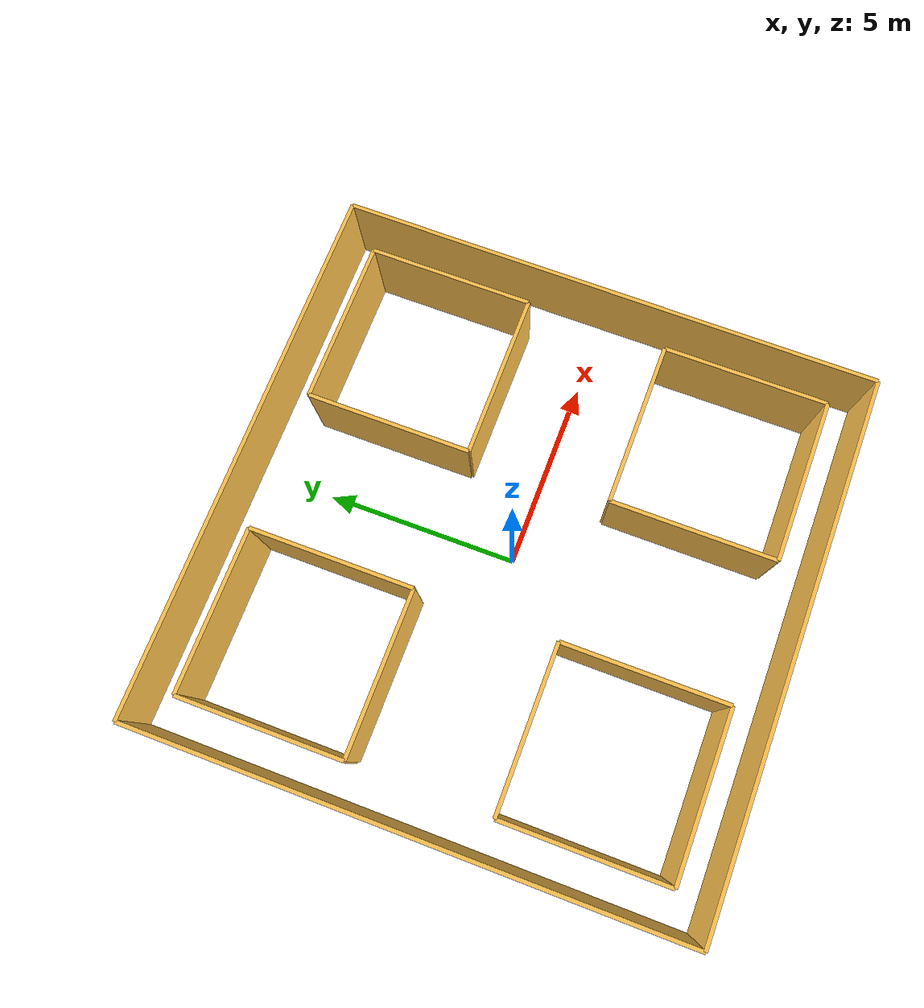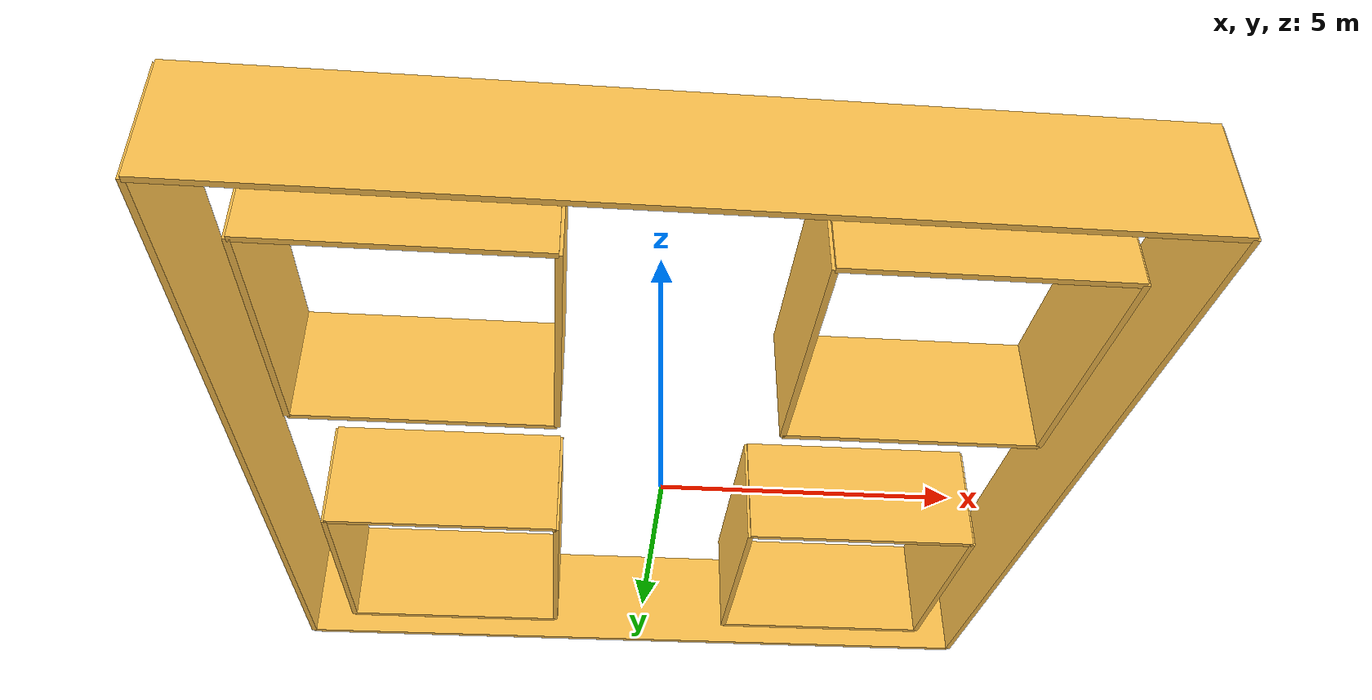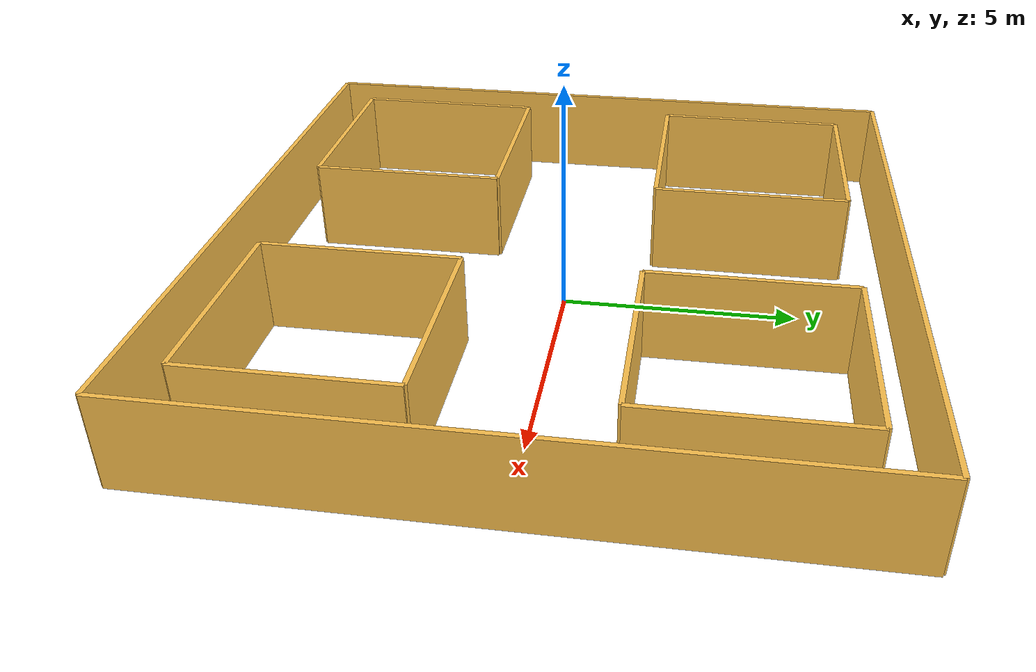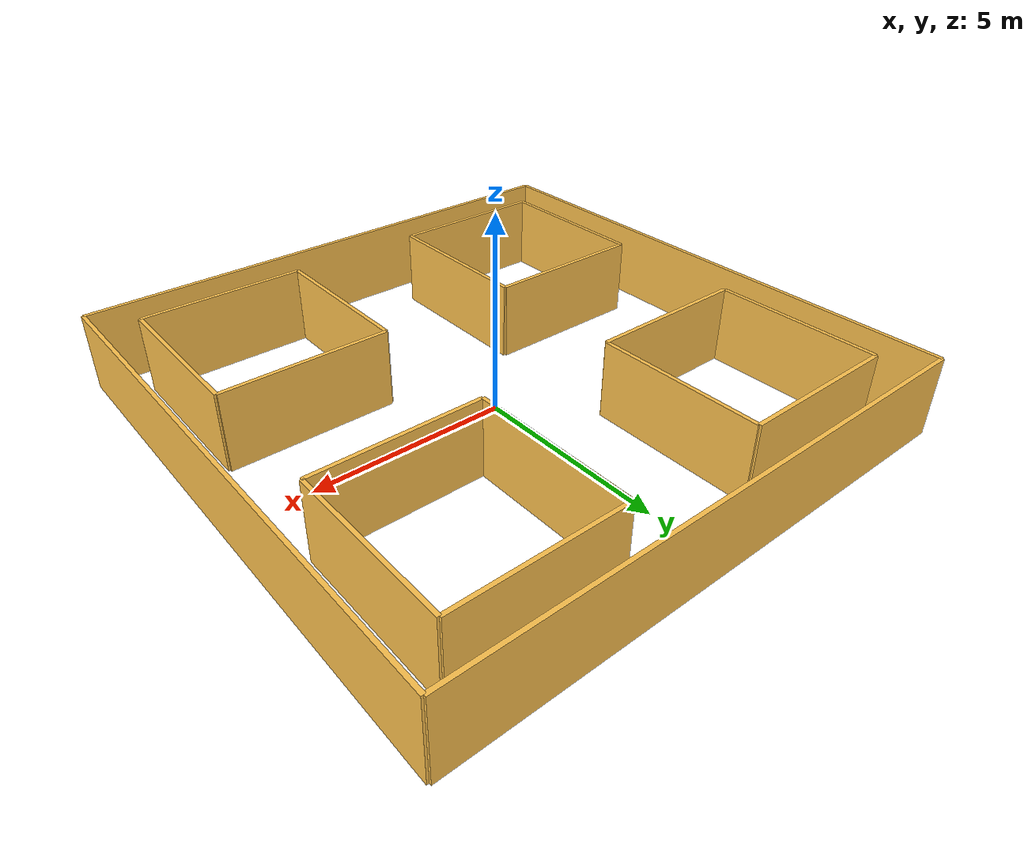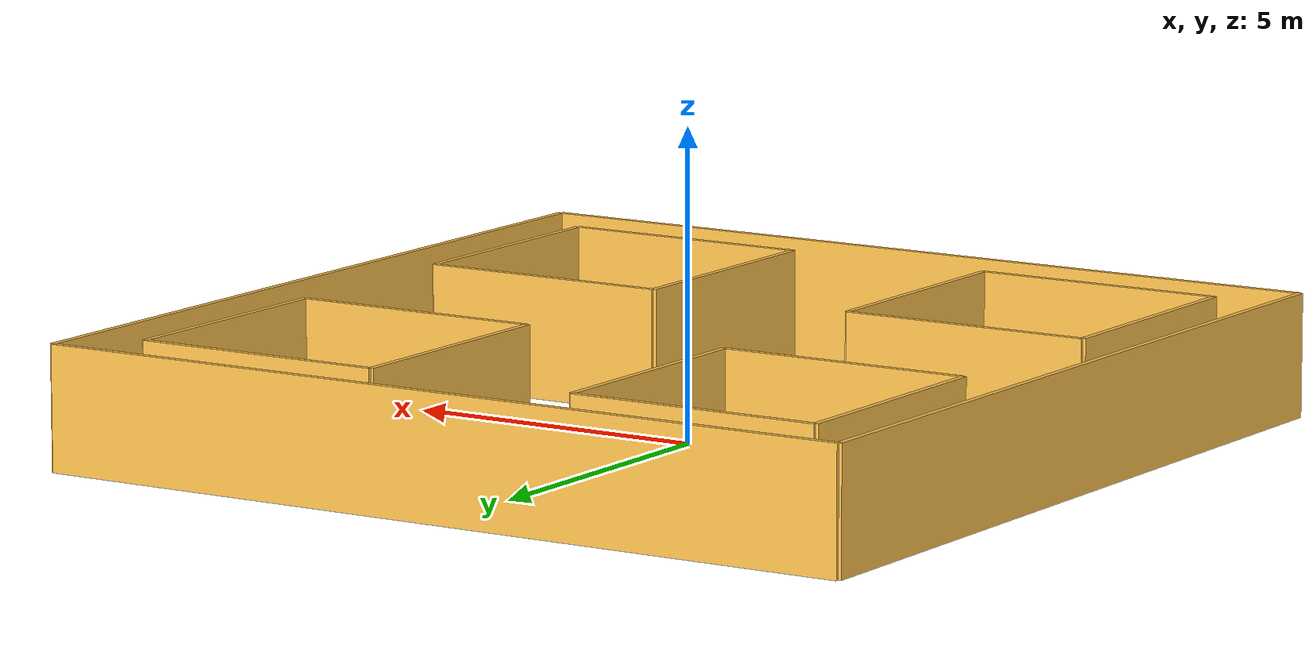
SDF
<?xml version='1.0' encoding='utf-8'?>
<sdf version="1.6">
  <model name="test_data_cross">
    <static>true</static>
    <link name="wall_0">
      <pose>-6.0 3.9 1.0 0 0 1.5707963267948966</pose>
      <self_collide>0</self_collide>
      <kinematic>0</kinematic>
      <visual name="wall_0_visual">
        <geometry>
          <box>
            <size>4.2 0.1 2.0</size>
            </box>
          </geometry>
        <material>
          <script>
            <uri>file://media/materials/scripts/gazebo.material</uri>
            <name>Gazebo/Grey</name>
            </script>
          <ambient>1 0.764706 0.305882 1</ambient>
          <diffuse>0.7 0.7 0.7 1</diffuse>
          <specular>0.01 0.01 0.01 1</specular>
          <emissive>0 0 0 1</emissive>
          <shader type="pixel" />
          </material>
        <cast_shadows>1</cast_shadows>
        <transparency>0</transparency>
        </visual>
      <collision name="wall_0_collision">
        <geometry>
          <box>
            <size>4.2 0.1 2.0</size>
            </box>
          </geometry>
        <laser_retro>0</laser_retro>
        <max_contacts>10</max_contacts>
        <surface>
          <friction>
            <ode>
              <mu>1</mu>
              <mu2>1</mu2>
              <fdir1>0 0 0</fdir1>
              <slip1>0</slip1>
              <slip2>0</slip2>
              </ode>
            </friction>
          <bounce>
            <restitution_coefficient>0</restitution_coefficient>
            <threshold>1000000</threshold>
            </bounce>
          <contact>
            <collide_without_contact>0</collide_without_contact>
            <collide_without_contact_bitmask>1</collide_without_contact_bitmask>
            <collide_bitmask>1</collide_bitmask>
            <ode>
              <soft_cfm>0</soft_cfm>
              <soft_erp>0.2</soft_erp>
              <kp>10000000000000.0</kp>
              <kd>1</kd>
              <max_vel>0.01</max_vel>
              <min_depth>0</min_depth>
              </ode>
            <bullet>
              <split_impulse>1</split_impulse>
              <split_impulse_penetration_threshold>-0.01</split_impulse_penetration_threshold>
              <soft_cfm>0</soft_cfm>
              <soft_erp>0.2</soft_erp>
              <kp>10000000000000.0</kp>
              <kd>1</kd>
              </bullet>
            </contact>
          </surface>
        </collision>
      </link>
    <link name="wall_1">
      <pose>-3.9 6.0 1.0 0 0 0.0</pose>
      <self_collide>0</self_collide>
      <kinematic>0</kinematic>
      <visual name="wall_1_visual">
        <geometry>
          <box>
            <size>4.2 0.1 2.0</size>
            </box>
          </geometry>
        <material>
          <script>
            <uri>file://media/materials/scripts/gazebo.material</uri>
            <name>Gazebo/Grey</name>
            </script>
          <ambient>1 0.764706 0.305882 1</ambient>
          <diffuse>0.7 0.7 0.7 1</diffuse>
          <specular>0.01 0.01 0.01 1</specular>
          <emissive>0 0 0 1</emissive>
          <shader type="pixel" />
          </material>
        <cast_shadows>1</cast_shadows>
        <transparency>0</transparency>
        </visual>
      <collision name="wall_1_collision">
        <geometry>
          <box>
            <size>4.2 0.1 2.0</size>
            </box>
          </geometry>
        <laser_retro>0</laser_retro>
        <max_contacts>10</max_contacts>
        <surface>
          <friction>
            <ode>
              <mu>1</mu>
              <mu2>1</mu2>
              <fdir1>0 0 0</fdir1>
              <slip1>0</slip1>
              <slip2>0</slip2>
              </ode>
            </friction>
          <bounce>
            <restitution_coefficient>0</restitution_coefficient>
            <threshold>1000000</threshold>
            </bounce>
          <contact>
            <collide_without_contact>0</collide_without_contact>
            <collide_without_contact_bitmask>1</collide_without_contact_bitmask>
            <collide_bitmask>1</collide_bitmask>
            <ode>
              <soft_cfm>0</soft_cfm>
              <soft_erp>0.2</soft_erp>
              <kp>10000000000000.0</kp>
              <kd>1</kd>
              <max_vel>0.01</max_vel>
              <min_depth>0</min_depth>
              </ode>
            <bullet>
              <split_impulse>1</split_impulse>
              <split_impulse_penetration_threshold>-0.01</split_impulse_penetration_threshold>
              <soft_cfm>0</soft_cfm>
              <soft_erp>0.2</soft_erp>
              <kp>10000000000000.0</kp>
              <kd>1</kd>
              </bullet>
            </contact>
          </surface>
        </collision>
      </link>
    <link name="wall_2">
      <pose>-1.8 3.9 1.0 0 0 -1.5707963267948966</pose>
      <self_collide>0</self_collide>
      <kinematic>0</kinematic>
      <visual name="wall_2_visual">
        <geometry>
          <box>
            <size>4.2 0.1 2.0</size>
            </box>
          </geometry>
        <material>
          <script>
            <uri>file://media/materials/scripts/gazebo.material</uri>
            <name>Gazebo/Grey</name>
            </script>
          <ambient>1 0.764706 0.305882 1</ambient>
          <diffuse>0.7 0.7 0.7 1</diffuse>
          <specular>0.01 0.01 0.01 1</specular>
          <emissive>0 0 0 1</emissive>
          <shader type="pixel" />
          </material>
        <cast_shadows>1</cast_shadows>
        <transparency>0</transparency>
        </visual>
      <collision name="wall_2_collision">
        <geometry>
          <box>
            <size>4.2 0.1 2.0</size>
            </box>
          </geometry>
        <laser_retro>0</laser_retro>
        <max_contacts>10</max_contacts>
        <surface>
          <friction>
            <ode>
              <mu>1</mu>
              <mu2>1</mu2>
              <fdir1>0 0 0</fdir1>
              <slip1>0</slip1>
              <slip2>0</slip2>
              </ode>
            </friction>
          <bounce>
            <restitution_coefficient>0</restitution_coefficient>
            <threshold>1000000</threshold>
            </bounce>
          <contact>
            <collide_without_contact>0</collide_without_contact>
            <collide_without_contact_bitmask>1</collide_without_contact_bitmask>
            <collide_bitmask>1</collide_bitmask>
            <ode>
              <soft_cfm>0</soft_cfm>
              <soft_erp>0.2</soft_erp>
              <kp>10000000000000.0</kp>
              <kd>1</kd>
              <max_vel>0.01</max_vel>
              <min_depth>0</min_depth>
              </ode>
            <bullet>
              <split_impulse>1</split_impulse>
              <split_impulse_penetration_threshold>-0.01</split_impulse_penetration_threshold>
              <soft_cfm>0</soft_cfm>
              <soft_erp>0.2</soft_erp>
              <kp>10000000000000.0</kp>
              <kd>1</kd>
              </bullet>
            </contact>
          </surface>
        </collision>
      </link>
    <link name="wall_3">
      <pose>-3.9 1.8 1.0 0 0 3.141592653589793</pose>
      <self_collide>0</self_collide>
      <kinematic>0</kinematic>
      <visual name="wall_3_visual">
        <geometry>
          <box>
            <size>4.2 0.1 2.0</size>
            </box>
          </geometry>
        <material>
          <script>
            <uri>file://media/materials/scripts/gazebo.material</uri>
            <name>Gazebo/Grey</name>
            </script>
          <ambient>1 0.764706 0.305882 1</ambient>
          <diffuse>0.7 0.7 0.7 1</diffuse>
          <specular>0.01 0.01 0.01 1</specular>
          <emissive>0 0 0 1</emissive>
          <shader type="pixel" />
          </material>
        <cast_shadows>1</cast_shadows>
        <transparency>0</transparency>
        </visual>
      <collision name="wall_3_collision">
        <geometry>
          <box>
            <size>4.2 0.1 2.0</size>
            </box>
          </geometry>
        <laser_retro>0</laser_retro>
        <max_contacts>10</max_contacts>
        <surface>
          <friction>
            <ode>
              <mu>1</mu>
              <mu2>1</mu2>
              <fdir1>0 0 0</fdir1>
              <slip1>0</slip1>
              <slip2>0</slip2>
              </ode>
            </friction>
          <bounce>
            <restitution_coefficient>0</restitution_coefficient>
            <threshold>1000000</threshold>
            </bounce>
          <contact>
            <collide_without_contact>0</collide_without_contact>
            <collide_without_contact_bitmask>1</collide_without_contact_bitmask>
            <collide_bitmask>1</collide_bitmask>
            <ode>
              <soft_cfm>0</soft_cfm>
              <soft_erp>0.2</soft_erp>
              <kp>10000000000000.0</kp>
              <kd>1</kd>
              <max_vel>0.01</max_vel>
              <min_depth>0</min_depth>
              </ode>
            <bullet>
              <split_impulse>1</split_impulse>
              <split_impulse_penetration_threshold>-0.01</split_impulse_penetration_threshold>
              <soft_cfm>0</soft_cfm>
              <soft_erp>0.2</soft_erp>
              <kp>10000000000000.0</kp>
              <kd>1</kd>
              </bullet>
            </contact>
          </surface>
        </collision>
      </link>
    <link name="wall_4">
      <pose>-6.0 -3.9 1.0 0 0 1.5707963267948966</pose>
      <self_collide>0</self_collide>
      <kinematic>0</kinematic>
      <visual name="wall_4_visual">
        <geometry>
          <box>
            <size>4.2 0.1 2.0</size>
            </box>
          </geometry>
        <material>
          <script>
            <uri>file://media/materials/scripts/gazebo.material</uri>
            <name>Gazebo/Grey</name>
            </script>
          <ambient>1 0.764706 0.305882 1</ambient>
          <diffuse>0.7 0.7 0.7 1</diffuse>
          <specular>0.01 0.01 0.01 1</specular>
          <emissive>0 0 0 1</emissive>
          <shader type="pixel" />
          </material>
        <cast_shadows>1</cast_shadows>
        <transparency>0</transparency>
        </visual>
      <collision name="wall_4_collision">
        <geometry>
          <box>
            <size>4.2 0.1 2.0</size>
            </box>
          </geometry>
        <laser_retro>0</laser_retro>
        <max_contacts>10</max_contacts>
        <surface>
          <friction>
            <ode>
              <mu>1</mu>
              <mu2>1</mu2>
              <fdir1>0 0 0</fdir1>
              <slip1>0</slip1>
              <slip2>0</slip2>
              </ode>
            </friction>
          <bounce>
            <restitution_coefficient>0</restitution_coefficient>
            <threshold>1000000</threshold>
            </bounce>
          <contact>
            <collide_without_contact>0</collide_without_contact>
            <collide_without_contact_bitmask>1</collide_without_contact_bitmask>
            <collide_bitmask>1</collide_bitmask>
            <ode>
              <soft_cfm>0</soft_cfm>
              <soft_erp>0.2</soft_erp>
              <kp>10000000000000.0</kp>
              <kd>1</kd>
              <max_vel>0.01</max_vel>
              <min_depth>0</min_depth>
              </ode>
            <bullet>
              <split_impulse>1</split_impulse>
              <split_impulse_penetration_threshold>-0.01</split_impulse_penetration_threshold>
              <soft_cfm>0</soft_cfm>
              <soft_erp>0.2</soft_erp>
              <kp>10000000000000.0</kp>
              <kd>1</kd>
              </bullet>
            </contact>
          </surface>
        </collision>
      </link>
    <link name="wall_5">
      <pose>-3.9 -1.8 1.0 0 0 0.0</pose>
      <self_collide>0</self_collide>
      <kinematic>0</kinematic>
      <visual name="wall_5_visual">
        <geometry>
          <box>
            <size>4.2 0.1 2.0</size>
            </box>
          </geometry>
        <material>
          <script>
            <uri>file://media/materials/scripts/gazebo.material</uri>
            <name>Gazebo/Grey</name>
            </script>
          <ambient>1 0.764706 0.305882 1</ambient>
          <diffuse>0.7 0.7 0.7 1</diffuse>
          <specular>0.01 0.01 0.01 1</specular>
          <emissive>0 0 0 1</emissive>
          <shader type="pixel" />
          </material>
        <cast_shadows>1</cast_shadows>
        <transparency>0</transparency>
        </visual>
      <collision name="wall_5_collision">
        <geometry>
          <box>
            <size>4.2 0.1 2.0</size>
            </box>
          </geometry>
        <laser_retro>0</laser_retro>
        <max_contacts>10</max_contacts>
        <surface>
          <friction>
            <ode>
              <mu>1</mu>
              <mu2>1</mu2>
              <fdir1>0 0 0</fdir1>
              <slip1>0</slip1>
              <slip2>0</slip2>
              </ode>
            </friction>
          <bounce>
            <restitution_coefficient>0</restitution_coefficient>
            <threshold>1000000</threshold>
            </bounce>
          <contact>
            <collide_without_contact>0</collide_without_contact>
            <collide_without_contact_bitmask>1</collide_without_contact_bitmask>
            <collide_bitmask>1</collide_bitmask>
            <ode>
              <soft_cfm>0</soft_cfm>
              <soft_erp>0.2</soft_erp>
              <kp>10000000000000.0</kp>
              <kd>1</kd>
              <max_vel>0.01</max_vel>
              <min_depth>0</min_depth>
              </ode>
            <bullet>
              <split_impulse>1</split_impulse>
              <split_impulse_penetration_threshold>-0.01</split_impulse_penetration_threshold>
              <soft_cfm>0</soft_cfm>
              <soft_erp>0.2</soft_erp>
              <kp>10000000000000.0</kp>
              <kd>1</kd>
              </bullet>
            </contact>
          </surface>
        </collision>
      </link>
    <link name="wall_6">
      <pose>-1.8 -3.9 1.0 0 0 -1.5707963267948966</pose>
      <self_collide>0</self_collide>
      <kinematic>0</kinematic>
      <visual name="wall_6_visual">
        <geometry>
          <box>
            <size>4.2 0.1 2.0</size>
            </box>
          </geometry>
        <material>
          <script>
            <uri>file://media/materials/scripts/gazebo.material</uri>
            <name>Gazebo/Grey</name>
            </script>
          <ambient>1 0.764706 0.305882 1</ambient>
          <diffuse>0.7 0.7 0.7 1</diffuse>
          <specular>0.01 0.01 0.01 1</specular>
          <emissive>0 0 0 1</emissive>
          <shader type="pixel" />
          </material>
        <cast_shadows>1</cast_shadows>
        <transparency>0</transparency>
        </visual>
      <collision name="wall_6_collision">
        <geometry>
          <box>
            <size>4.2 0.1 2.0</size>
            </box>
          </geometry>
        <laser_retro>0</laser_retro>
        <max_contacts>10</max_contacts>
        <surface>
          <friction>
            <ode>
              <mu>1</mu>
              <mu2>1</mu2>
              <fdir1>0 0 0</fdir1>
              <slip1>0</slip1>
              <slip2>0</slip2>
              </ode>
            </friction>
          <bounce>
            <restitution_coefficient>0</restitution_coefficient>
            <threshold>1000000</threshold>
            </bounce>
          <contact>
            <collide_without_contact>0</collide_without_contact>
            <collide_without_contact_bitmask>1</collide_without_contact_bitmask>
            <collide_bitmask>1</collide_bitmask>
            <ode>
              <soft_cfm>0</soft_cfm>
              <soft_erp>0.2</soft_erp>
              <kp>10000000000000.0</kp>
              <kd>1</kd>
              <max_vel>0.01</max_vel>
              <min_depth>0</min_depth>
              </ode>
            <bullet>
              <split_impulse>1</split_impulse>
              <split_impulse_penetration_threshold>-0.01</split_impulse_penetration_threshold>
              <soft_cfm>0</soft_cfm>
              <soft_erp>0.2</soft_erp>
              <kp>10000000000000.0</kp>
              <kd>1</kd>
              </bullet>
            </contact>
          </surface>
        </collision>
      </link>
    <link name="wall_7">
      <pose>-3.9 -6.0 1.0 0 0 3.141592653589793</pose>
      <self_collide>0</self_collide>
      <kinematic>0</kinematic>
      <visual name="wall_7_visual">
        <geometry>
          <box>
            <size>4.2 0.1 2.0</size>
            </box>
          </geometry>
        <material>
          <script>
            <uri>file://media/materials/scripts/gazebo.material</uri>
            <name>Gazebo/Grey</name>
            </script>
          <ambient>1 0.764706 0.305882 1</ambient>
          <diffuse>0.7 0.7 0.7 1</diffuse>
          <specular>0.01 0.01 0.01 1</specular>
          <emissive>0 0 0 1</emissive>
          <shader type="pixel" />
          </material>
        <cast_shadows>1</cast_shadows>
        <transparency>0</transparency>
        </visual>
      <collision name="wall_7_collision">
        <geometry>
          <box>
            <size>4.2 0.1 2.0</size>
            </box>
          </geometry>
        <laser_retro>0</laser_retro>
        <max_contacts>10</max_contacts>
        <surface>
          <friction>
            <ode>
              <mu>1</mu>
              <mu2>1</mu2>
              <fdir1>0 0 0</fdir1>
              <slip1>0</slip1>
              <slip2>0</slip2>
              </ode>
            </friction>
          <bounce>
            <restitution_coefficient>0</restitution_coefficient>
            <threshold>1000000</threshold>
            </bounce>
          <contact>
            <collide_without_contact>0</collide_without_contact>
            <collide_without_contact_bitmask>1</collide_without_contact_bitmask>
            <collide_bitmask>1</collide_bitmask>
            <ode>
              <soft_cfm>0</soft_cfm>
              <soft_erp>0.2</soft_erp>
              <kp>10000000000000.0</kp>
              <kd>1</kd>
              <max_vel>0.01</max_vel>
              <min_depth>0</min_depth>
              </ode>
            <bullet>
              <split_impulse>1</split_impulse>
              <split_impulse_penetration_threshold>-0.01</split_impulse_penetration_threshold>
              <soft_cfm>0</soft_cfm>
              <soft_erp>0.2</soft_erp>
              <kp>10000000000000.0</kp>
              <kd>1</kd>
              </bullet>
            </contact>
          </surface>
        </collision>
      </link>
    <link name="wall_8">
      <pose>6.0 3.9 1.0 0 0 1.5707963267948966</pose>
      <self_collide>0</self_collide>
      <kinematic>0</kinematic>
      <visual name="wall_8_visual">
        <geometry>
          <box>
            <size>4.2 0.1 2.0</size>
            </box>
          </geometry>
        <material>
          <script>
            <uri>file://media/materials/scripts/gazebo.material</uri>
            <name>Gazebo/Grey</name>
            </script>
          <ambient>1 0.764706 0.305882 1</ambient>
          <diffuse>0.7 0.7 0.7 1</diffuse>
          <specular>0.01 0.01 0.01 1</specular>
          <emissive>0 0 0 1</emissive>
          <shader type="pixel" />
          </material>
        <cast_shadows>1</cast_shadows>
        <transparency>0</transparency>
        </visual>
      <collision name="wall_8_collision">
        <geometry>
          <box>
            <size>4.2 0.1 2.0</size>
            </box>
          </geometry>
        <laser_retro>0</laser_retro>
        <max_contacts>10</max_contacts>
        <surface>
          <friction>
            <ode>
              <mu>1</mu>
              <mu2>1</mu2>
              <fdir1>0 0 0</fdir1>
              <slip1>0</slip1>
              <slip2>0</slip2>
              </ode>
            </friction>
          <bounce>
            <restitution_coefficient>0</restitution_coefficient>
            <threshold>1000000</threshold>
            </bounce>
          <contact>
            <collide_without_contact>0</collide_without_contact>
            <collide_without_contact_bitmask>1</collide_without_contact_bitmask>
            <collide_bitmask>1</collide_bitmask>
            <ode>
              <soft_cfm>0</soft_cfm>
              <soft_erp>0.2</soft_erp>
              <kp>10000000000000.0</kp>
              <kd>1</kd>
              <max_vel>0.01</max_vel>
              <min_depth>0</min_depth>
              </ode>
            <bullet>
              <split_impulse>1</split_impulse>
              <split_impulse_penetration_threshold>-0.01</split_impulse_penetration_threshold>
              <soft_cfm>0</soft_cfm>
              <soft_erp>0.2</soft_erp>
              <kp>10000000000000.0</kp>
              <kd>1</kd>
              </bullet>
            </contact>
          </surface>
        </collision>
      </link>
    <link name="wall_9">
      <pose>3.9 6.0 1.0 0 0 3.141592653589793</pose>
      <self_collide>0</self_collide>
      <kinematic>0</kinematic>
      <visual name="wall_9_visual">
        <geometry>
          <box>
            <size>4.2 0.1 2.0</size>
            </box>
          </geometry>
        <material>
          <script>
            <uri>file://media/materials/scripts/gazebo.material</uri>
            <name>Gazebo/Grey</name>
            </script>
          <ambient>1 0.764706 0.305882 1</ambient>
          <diffuse>0.7 0.7 0.7 1</diffuse>
          <specular>0.01 0.01 0.01 1</specular>
          <emissive>0 0 0 1</emissive>
          <shader type="pixel" />
          </material>
        <cast_shadows>1</cast_shadows>
        <transparency>0</transparency>
        </visual>
      <collision name="wall_9_collision">
        <geometry>
          <box>
            <size>4.2 0.1 2.0</size>
            </box>
          </geometry>
        <laser_retro>0</laser_retro>
        <max_contacts>10</max_contacts>
        <surface>
          <friction>
            <ode>
              <mu>1</mu>
              <mu2>1</mu2>
              <fdir1>0 0 0</fdir1>
              <slip1>0</slip1>
              <slip2>0</slip2>
              </ode>
            </friction>
          <bounce>
            <restitution_coefficient>0</restitution_coefficient>
            <threshold>1000000</threshold>
            </bounce>
          <contact>
            <collide_without_contact>0</collide_without_contact>
            <collide_without_contact_bitmask>1</collide_without_contact_bitmask>
            <collide_bitmask>1</collide_bitmask>
            <ode>
              <soft_cfm>0</soft_cfm>
              <soft_erp>0.2</soft_erp>
              <kp>10000000000000.0</kp>
              <kd>1</kd>
              <max_vel>0.01</max_vel>
              <min_depth>0</min_depth>
              </ode>
            <bullet>
              <split_impulse>1</split_impulse>
              <split_impulse_penetration_threshold>-0.01</split_impulse_penetration_threshold>
              <soft_cfm>0</soft_cfm>
              <soft_erp>0.2</soft_erp>
              <kp>10000000000000.0</kp>
              <kd>1</kd>
              </bullet>
            </contact>
          </surface>
        </collision>
      </link>
    <link name="wall_10">
      <pose>1.8 3.9 1.0 0 0 -1.5707963267948966</pose>
      <self_collide>0</self_collide>
      <kinematic>0</kinematic>
      <visual name="wall_10_visual">
        <geometry>
          <box>
            <size>4.2 0.1 2.0</size>
            </box>
          </geometry>
        <material>
          <script>
            <uri>file://media/materials/scripts/gazebo.material</uri>
            <name>Gazebo/Grey</name>
            </script>
          <ambient>1 0.764706 0.305882 1</ambient>
          <diffuse>0.7 0.7 0.7 1</diffuse>
          <specular>0.01 0.01 0.01 1</specular>
          <emissive>0 0 0 1</emissive>
          <shader type="pixel" />
          </material>
        <cast_shadows>1</cast_shadows>
        <transparency>0</transparency>
        </visual>
      <collision name="wall_10_collision">
        <geometry>
          <box>
            <size>4.2 0.1 2.0</size>
            </box>
          </geometry>
        <laser_retro>0</laser_retro>
        <max_contacts>10</max_contacts>
        <surface>
          <friction>
            <ode>
              <mu>1</mu>
              <mu2>1</mu2>
              <fdir1>0 0 0</fdir1>
              <slip1>0</slip1>
              <slip2>0</slip2>
              </ode>
            </friction>
          <bounce>
            <restitution_coefficient>0</restitution_coefficient>
            <threshold>1000000</threshold>
            </bounce>
          <contact>
            <collide_without_contact>0</collide_without_contact>
            <collide_without_contact_bitmask>1</collide_without_contact_bitmask>
            <collide_bitmask>1</collide_bitmask>
            <ode>
              <soft_cfm>0</soft_cfm>
              <soft_erp>0.2</soft_erp>
              <kp>10000000000000.0</kp>
              <kd>1</kd>
              <max_vel>0.01</max_vel>
              <min_depth>0</min_depth>
              </ode>
            <bullet>
              <split_impulse>1</split_impulse>
              <split_impulse_penetration_threshold>-0.01</split_impulse_penetration_threshold>
              <soft_cfm>0</soft_cfm>
              <soft_erp>0.2</soft_erp>
              <kp>10000000000000.0</kp>
              <kd>1</kd>
              </bullet>
            </contact>
          </surface>
        </collision>
      </link>
    <link name="wall_11">
      <pose>3.9 1.8 1.0 0 0 0.0</pose>
      <self_collide>0</self_collide>
      <kinematic>0</kinematic>
      <visual name="wall_11_visual">
        <geometry>
          <box>
            <size>4.2 0.1 2.0</size>
            </box>
          </geometry>
        <material>
          <script>
            <uri>file://media/materials/scripts/gazebo.material</uri>
            <name>Gazebo/Grey</name>
            </script>
          <ambient>1 0.764706 0.305882 1</ambient>
          <diffuse>0.7 0.7 0.7 1</diffuse>
          <specular>0.01 0.01 0.01 1</specular>
          <emissive>0 0 0 1</emissive>
          <shader type="pixel" />
          </material>
        <cast_shadows>1</cast_shadows>
        <transparency>0</transparency>
        </visual>
      <collision name="wall_11_collision">
        <geometry>
          <box>
            <size>4.2 0.1 2.0</size>
            </box>
          </geometry>
        <laser_retro>0</laser_retro>
        <max_contacts>10</max_contacts>
        <surface>
          <friction>
            <ode>
              <mu>1</mu>
              <mu2>1</mu2>
              <fdir1>0 0 0</fdir1>
              <slip1>0</slip1>
              <slip2>0</slip2>
              </ode>
            </friction>
          <bounce>
            <restitution_coefficient>0</restitution_coefficient>
            <threshold>1000000</threshold>
            </bounce>
          <contact>
            <collide_without_contact>0</collide_without_contact>
            <collide_without_contact_bitmask>1</collide_without_contact_bitmask>
            <collide_bitmask>1</collide_bitmask>
            <ode>
              <soft_cfm>0</soft_cfm>
              <soft_erp>0.2</soft_erp>
              <kp>10000000000000.0</kp>
              <kd>1</kd>
              <max_vel>0.01</max_vel>
              <min_depth>0</min_depth>
              </ode>
            <bullet>
              <split_impulse>1</split_impulse>
              <split_impulse_penetration_threshold>-0.01</split_impulse_penetration_threshold>
              <soft_cfm>0</soft_cfm>
              <soft_erp>0.2</soft_erp>
              <kp>10000000000000.0</kp>
              <kd>1</kd>
              </bullet>
            </contact>
          </surface>
        </collision>
      </link>
    <link name="wall_12">
      <pose>6.0 -3.9 1.0 0 0 -1.5707963267948966</pose>
      <self_collide>0</self_collide>
      <kinematic>0</kinematic>
      <visual name="wall_12_visual">
        <geometry>
          <box>
            <size>4.2 0.1 2.0</size>
            </box>
          </geometry>
        <material>
          <script>
            <uri>file://media/materials/scripts/gazebo.material</uri>
            <name>Gazebo/Grey</name>
            </script>
          <ambient>1 0.764706 0.305882 1</ambient>
          <diffuse>0.7 0.7 0.7 1</diffuse>
          <specular>0.01 0.01 0.01 1</specular>
          <emissive>0 0 0 1</emissive>
          <shader type="pixel" />
          </material>
        <cast_shadows>1</cast_shadows>
        <transparency>0</transparency>
        </visual>
      <collision name="wall_12_collision">
        <geometry>
          <box>
            <size>4.2 0.1 2.0</size>
            </box>
          </geometry>
        <laser_retro>0</laser_retro>
        <max_contacts>10</max_contacts>
        <surface>
          <friction>
            <ode>
              <mu>1</mu>
              <mu2>1</mu2>
              <fdir1>0 0 0</fdir1>
              <slip1>0</slip1>
              <slip2>0</slip2>
              </ode>
            </friction>
          <bounce>
            <restitution_coefficient>0</restitution_coefficient>
            <threshold>1000000</threshold>
            </bounce>
          <contact>
            <collide_without_contact>0</collide_without_contact>
            <collide_without_contact_bitmask>1</collide_without_contact_bitmask>
            <collide_bitmask>1</collide_bitmask>
            <ode>
              <soft_cfm>0</soft_cfm>
              <soft_erp>0.2</soft_erp>
              <kp>10000000000000.0</kp>
              <kd>1</kd>
              <max_vel>0.01</max_vel>
              <min_depth>0</min_depth>
              </ode>
            <bullet>
              <split_impulse>1</split_impulse>
              <split_impulse_penetration_threshold>-0.01</split_impulse_penetration_threshold>
              <soft_cfm>0</soft_cfm>
              <soft_erp>0.2</soft_erp>
              <kp>10000000000000.0</kp>
              <kd>1</kd>
              </bullet>
            </contact>
          </surface>
        </collision>
      </link>
    <link name="wall_13">
      <pose>3.9 -6.0 1.0 0 0 3.141592653589793</pose>
      <self_collide>0</self_collide>
      <kinematic>0</kinematic>
      <visual name="wall_13_visual">
        <geometry>
          <box>
            <size>4.2 0.1 2.0</size>
            </box>
          </geometry>
        <material>
          <script>
            <uri>file://media/materials/scripts/gazebo.material</uri>
            <name>Gazebo/Grey</name>
            </script>
          <ambient>1 0.764706 0.305882 1</ambient>
          <diffuse>0.7 0.7 0.7 1</diffuse>
          <specular>0.01 0.01 0.01 1</specular>
          <emissive>0 0 0 1</emissive>
          <shader type="pixel" />
          </material>
        <cast_shadows>1</cast_shadows>
        <transparency>0</transparency>
        </visual>
      <collision name="wall_13_collision">
        <geometry>
          <box>
            <size>4.2 0.1 2.0</size>
            </box>
          </geometry>
        <laser_retro>0</laser_retro>
        <max_contacts>10</max_contacts>
        <surface>
          <friction>
            <ode>
              <mu>1</mu>
              <mu2>1</mu2>
              <fdir1>0 0 0</fdir1>
              <slip1>0</slip1>
              <slip2>0</slip2>
              </ode>
            </friction>
          <bounce>
            <restitution_coefficient>0</restitution_coefficient>
            <threshold>1000000</threshold>
            </bounce>
          <contact>
            <collide_without_contact>0</collide_without_contact>
            <collide_without_contact_bitmask>1</collide_without_contact_bitmask>
            <collide_bitmask>1</collide_bitmask>
            <ode>
              <soft_cfm>0</soft_cfm>
              <soft_erp>0.2</soft_erp>
              <kp>10000000000000.0</kp>
              <kd>1</kd>
              <max_vel>0.01</max_vel>
              <min_depth>0</min_depth>
              </ode>
            <bullet>
              <split_impulse>1</split_impulse>
              <split_impulse_penetration_threshold>-0.01</split_impulse_penetration_threshold>
              <soft_cfm>0</soft_cfm>
              <soft_erp>0.2</soft_erp>
              <kp>10000000000000.0</kp>
              <kd>1</kd>
              </bullet>
            </contact>
          </surface>
        </collision>
      </link>
    <link name="wall_14">
      <pose>1.8 -3.9 1.0 0 0 1.5707963267948966</pose>
      <self_collide>0</self_collide>
      <kinematic>0</kinematic>
      <visual name="wall_14_visual">
        <geometry>
          <box>
            <size>4.2 0.1 2.0</size>
            </box>
          </geometry>
        <material>
          <script>
            <uri>file://media/materials/scripts/gazebo.material</uri>
            <name>Gazebo/Grey</name>
            </script>
          <ambient>1 0.764706 0.305882 1</ambient>
          <diffuse>0.7 0.7 0.7 1</diffuse>
          <specular>0.01 0.01 0.01 1</specular>
          <emissive>0 0 0 1</emissive>
          <shader type="pixel" />
          </material>
        <cast_shadows>1</cast_shadows>
        <transparency>0</transparency>
        </visual>
      <collision name="wall_14_collision">
        <geometry>
          <box>
            <size>4.2 0.1 2.0</size>
            </box>
          </geometry>
        <laser_retro>0</laser_retro>
        <max_contacts>10</max_contacts>
        <surface>
          <friction>
            <ode>
              <mu>1</mu>
              <mu2>1</mu2>
              <fdir1>0 0 0</fdir1>
              <slip1>0</slip1>
              <slip2>0</slip2>
              </ode>
            </friction>
          <bounce>
            <restitution_coefficient>0</restitution_coefficient>
            <threshold>1000000</threshold>
            </bounce>
          <contact>
            <collide_without_contact>0</collide_without_contact>
            <collide_without_contact_bitmask>1</collide_without_contact_bitmask>
            <collide_bitmask>1</collide_bitmask>
            <ode>
              <soft_cfm>0</soft_cfm>
              <soft_erp>0.2</soft_erp>
              <kp>10000000000000.0</kp>
              <kd>1</kd>
              <max_vel>0.01</max_vel>
              <min_depth>0</min_depth>
              </ode>
            <bullet>
              <split_impulse>1</split_impulse>
              <split_impulse_penetration_threshold>-0.01</split_impulse_penetration_threshold>
              <soft_cfm>0</soft_cfm>
              <soft_erp>0.2</soft_erp>
              <kp>10000000000000.0</kp>
              <kd>1</kd>
              </bullet>
            </contact>
          </surface>
        </collision>
      </link>
    <link name="wall_15">
      <pose>3.9 -1.8 1.0 0 0 0.0</pose>
      <self_collide>0</self_collide>
      <kinematic>0</kinematic>
      <visual name="wall_15_visual">
        <geometry>
          <box>
            <size>4.2 0.1 2.0</size>
            </box>
          </geometry>
        <material>
          <script>
            <uri>file://media/materials/scripts/gazebo.material</uri>
            <name>Gazebo/Grey</name>
            </script>
          <ambient>1 0.764706 0.305882 1</ambient>
          <diffuse>0.7 0.7 0.7 1</diffuse>
          <specular>0.01 0.01 0.01 1</specular>
          <emissive>0 0 0 1</emissive>
          <shader type="pixel" />
          </material>
        <cast_shadows>1</cast_shadows>
        <transparency>0</transparency>
        </visual>
      <collision name="wall_15_collision">
        <geometry>
          <box>
            <size>4.2 0.1 2.0</size>
            </box>
          </geometry>
        <laser_retro>0</laser_retro>
        <max_contacts>10</max_contacts>
        <surface>
          <friction>
            <ode>
              <mu>1</mu>
              <mu2>1</mu2>
              <fdir1>0 0 0</fdir1>
              <slip1>0</slip1>
              <slip2>0</slip2>
              </ode>
            </friction>
          <bounce>
            <restitution_coefficient>0</restitution_coefficient>
            <threshold>1000000</threshold>
            </bounce>
          <contact>
            <collide_without_contact>0</collide_without_contact>
            <collide_without_contact_bitmask>1</collide_without_contact_bitmask>
            <collide_bitmask>1</collide_bitmask>
            <ode>
              <soft_cfm>0</soft_cfm>
              <soft_erp>0.2</soft_erp>
              <kp>10000000000000.0</kp>
              <kd>1</kd>
              <max_vel>0.01</max_vel>
              <min_depth>0</min_depth>
              </ode>
            <bullet>
              <split_impulse>1</split_impulse>
              <split_impulse_penetration_threshold>-0.01</split_impulse_penetration_threshold>
              <soft_cfm>0</soft_cfm>
              <soft_erp>0.2</soft_erp>
              <kp>10000000000000.0</kp>
              <kd>1</kd>
              </bullet>
            </contact>
          </surface>
        </collision>
      </link>
    <link name="wall_16">
      <pose>0.0 -7.0 1.0 0 0 0.0</pose>
      <self_collide>0</self_collide>
      <kinematic>0</kinematic>
      <visual name="wall_16_visual">
        <geometry>
          <box>
            <size>14.0 0.1 2.0</size>
            </box>
          </geometry>
        <material>
          <script>
            <uri>file://media/materials/scripts/gazebo.material</uri>
            <name>Gazebo/Grey</name>
            </script>
          <ambient>1 0.764706 0.305882 1</ambient>
          <diffuse>0.7 0.7 0.7 1</diffuse>
          <specular>0.01 0.01 0.01 1</specular>
          <emissive>0 0 0 1</emissive>
          <shader type="pixel" />
          </material>
        <cast_shadows>1</cast_shadows>
        <transparency>0</transparency>
        </visual>
      <collision name="wall_16_collision">
        <geometry>
          <box>
            <size>14.0 0.1 2.0</size>
            </box>
          </geometry>
        <laser_retro>0</laser_retro>
        <max_contacts>10</max_contacts>
        <surface>
          <friction>
            <ode>
              <mu>1</mu>
              <mu2>1</mu2>
              <fdir1>0 0 0</fdir1>
              <slip1>0</slip1>
              <slip2>0</slip2>
              </ode>
            </friction>
          <bounce>
            <restitution_coefficient>0</restitution_coefficient>
            <threshold>1000000</threshold>
            </bounce>
          <contact>
            <collide_without_contact>0</collide_without_contact>
            <collide_without_contact_bitmask>1</collide_without_contact_bitmask>
            <collide_bitmask>1</collide_bitmask>
            <ode>
              <soft_cfm>0</soft_cfm>
              <soft_erp>0.2</soft_erp>
              <kp>10000000000000.0</kp>
              <kd>1</kd>
              <max_vel>0.01</max_vel>
              <min_depth>0</min_depth>
              </ode>
            <bullet>
              <split_impulse>1</split_impulse>
              <split_impulse_penetration_threshold>-0.01</split_impulse_penetration_threshold>
              <soft_cfm>0</soft_cfm>
              <soft_erp>0.2</soft_erp>
              <kp>10000000000000.0</kp>
              <kd>1</kd>
              </bullet>
            </contact>
          </surface>
        </collision>
      </link>
    <link name="wall_17">
      <pose>7.0 0.0 1.0 0 0 1.5707963267948966</pose>
      <self_collide>0</self_collide>
      <kinematic>0</kinematic>
      <visual name="wall_17_visual">
        <geometry>
          <box>
            <size>14.0 0.1 2.0</size>
            </box>
          </geometry>
        <material>
          <script>
            <uri>file://media/materials/scripts/gazebo.material</uri>
            <name>Gazebo/Grey</name>
            </script>
          <ambient>1 0.764706 0.305882 1</ambient>
          <diffuse>0.7 0.7 0.7 1</diffuse>
          <specular>0.01 0.01 0.01 1</specular>
          <emissive>0 0 0 1</emissive>
          <shader type="pixel" />
          </material>
        <cast_shadows>1</cast_shadows>
        <transparency>0</transparency>
        </visual>
      <collision name="wall_17_collision">
        <geometry>
          <box>
            <size>14.0 0.1 2.0</size>
            </box>
          </geometry>
        <laser_retro>0</laser_retro>
        <max_contacts>10</max_contacts>
        <surface>
          <friction>
            <ode>
              <mu>1</mu>
              <mu2>1</mu2>
              <fdir1>0 0 0</fdir1>
              <slip1>0</slip1>
              <slip2>0</slip2>
              </ode>
            </friction>
          <bounce>
            <restitution_coefficient>0</restitution_coefficient>
            <threshold>1000000</threshold>
            </bounce>
          <contact>
            <collide_without_contact>0</collide_without_contact>
            <collide_without_contact_bitmask>1</collide_without_contact_bitmask>
            <collide_bitmask>1</collide_bitmask>
            <ode>
              <soft_cfm>0</soft_cfm>
              <soft_erp>0.2</soft_erp>
              <kp>10000000000000.0</kp>
              <kd>1</kd>
              <max_vel>0.01</max_vel>
              <min_depth>0</min_depth>
              </ode>
            <bullet>
              <split_impulse>1</split_impulse>
              <split_impulse_penetration_threshold>-0.01</split_impulse_penetration_threshold>
              <soft_cfm>0</soft_cfm>
              <soft_erp>0.2</soft_erp>
              <kp>10000000000000.0</kp>
              <kd>1</kd>
              </bullet>
            </contact>
          </surface>
        </collision>
      </link>
    <link name="wall_18">
      <pose>0.0 7.0 1.0 0 0 3.141592653589793</pose>
      <self_collide>0</self_collide>
      <kinematic>0</kinematic>
      <visual name="wall_18_visual">
        <geometry>
          <box>
            <size>14.0 0.1 2.0</size>
            </box>
          </geometry>
        <material>
          <script>
            <uri>file://media/materials/scripts/gazebo.material</uri>
            <name>Gazebo/Grey</name>
            </script>
          <ambient>1 0.764706 0.305882 1</ambient>
          <diffuse>0.7 0.7 0.7 1</diffuse>
          <specular>0.01 0.01 0.01 1</specular>
          <emissive>0 0 0 1</emissive>
          <shader type="pixel" />
          </material>
        <cast_shadows>1</cast_shadows>
        <transparency>0</transparency>
        </visual>
      <collision name="wall_18_collision">
        <geometry>
          <box>
            <size>14.0 0.1 2.0</size>
            </box>
          </geometry>
        <laser_retro>0</laser_retro>
        <max_contacts>10</max_contacts>
        <surface>
          <friction>
            <ode>
              <mu>1</mu>
              <mu2>1</mu2>
              <fdir1>0 0 0</fdir1>
              <slip1>0</slip1>
              <slip2>0</slip2>
              </ode>
            </friction>
          <bounce>
            <restitution_coefficient>0</restitution_coefficient>
            <threshold>1000000</threshold>
            </bounce>
          <contact>
            <collide_without_contact>0</collide_without_contact>
            <collide_without_contact_bitmask>1</collide_without_contact_bitmask>
            <collide_bitmask>1</collide_bitmask>
            <ode>
              <soft_cfm>0</soft_cfm>
              <soft_erp>0.2</soft_erp>
              <kp>10000000000000.0</kp>
              <kd>1</kd>
              <max_vel>0.01</max_vel>
              <min_depth>0</min_depth>
              </ode>
            <bullet>
              <split_impulse>1</split_impulse>
              <split_impulse_penetration_threshold>-0.01</split_impulse_penetration_threshold>
              <soft_cfm>0</soft_cfm>
              <soft_erp>0.2</soft_erp>
              <kp>10000000000000.0</kp>
              <kd>1</kd>
              </bullet>
            </contact>
          </surface>
        </collision>
      </link>
    <link name="wall_19">
      <pose>-7.0 0.0 1.0 0 0 -1.5707963267948966</pose>
      <self_collide>0</self_collide>
      <kinematic>0</kinematic>
      <visual name="wall_19_visual">
        <geometry>
          <box>
            <size>14.0 0.1 2.0</size>
            </box>
          </geometry>
        <material>
          <script>
            <uri>file://media/materials/scripts/gazebo.material</uri>
            <name>Gazebo/Grey</name>
            </script>
          <ambient>1 0.764706 0.305882 1</ambient>
          <diffuse>0.7 0.7 0.7 1</diffuse>
          <specular>0.01 0.01 0.01 1</specular>
          <emissive>0 0 0 1</emissive>
          <shader type="pixel" />
          </material>
        <cast_shadows>1</cast_shadows>
        <transparency>0</transparency>
        </visual>
      <collision name="wall_19_collision">
        <geometry>
          <box>
            <size>14.0 0.1 2.0</size>
            </box>
          </geometry>
        <laser_retro>0</laser_retro>
        <max_contacts>10</max_contacts>
        <surface>
          <friction>
            <ode>
              <mu>1</mu>
              <mu2>1</mu2>
              <fdir1>0 0 0</fdir1>
              <slip1>0</slip1>
              <slip2>0</slip2>
              </ode>
            </friction>
          <bounce>
            <restitution_coefficient>0</restitution_coefficient>
            <threshold>1000000</threshold>
            </bounce>
          <contact>
            <collide_without_contact>0</collide_without_contact>
            <collide_without_contact_bitmask>1</collide_without_contact_bitmask>
            <collide_bitmask>1</collide_bitmask>
            <ode>
              <soft_cfm>0</soft_cfm>
              <soft_erp>0.2</soft_erp>
              <kp>10000000000000.0</kp>
              <kd>1</kd>
              <max_vel>0.01</max_vel>
              <min_depth>0</min_depth>
              </ode>
            <bullet>
              <split_impulse>1</split_impulse>
              <split_impulse_penetration_threshold>-0.01</split_impulse_penetration_threshold>
              <soft_cfm>0</soft_cfm>
              <soft_erp>0.2</soft_erp>
              <kp>10000000000000.0</kp>
              <kd>1</kd>
              </bullet>
            </contact>
          </surface>
        </collision>
      </link>
    </model>
  </sdf>
